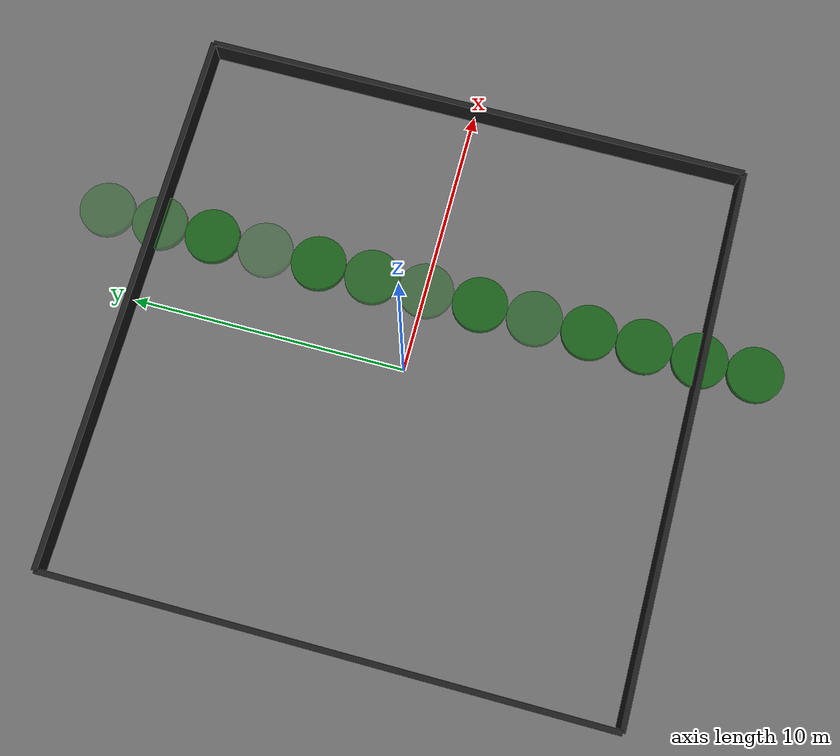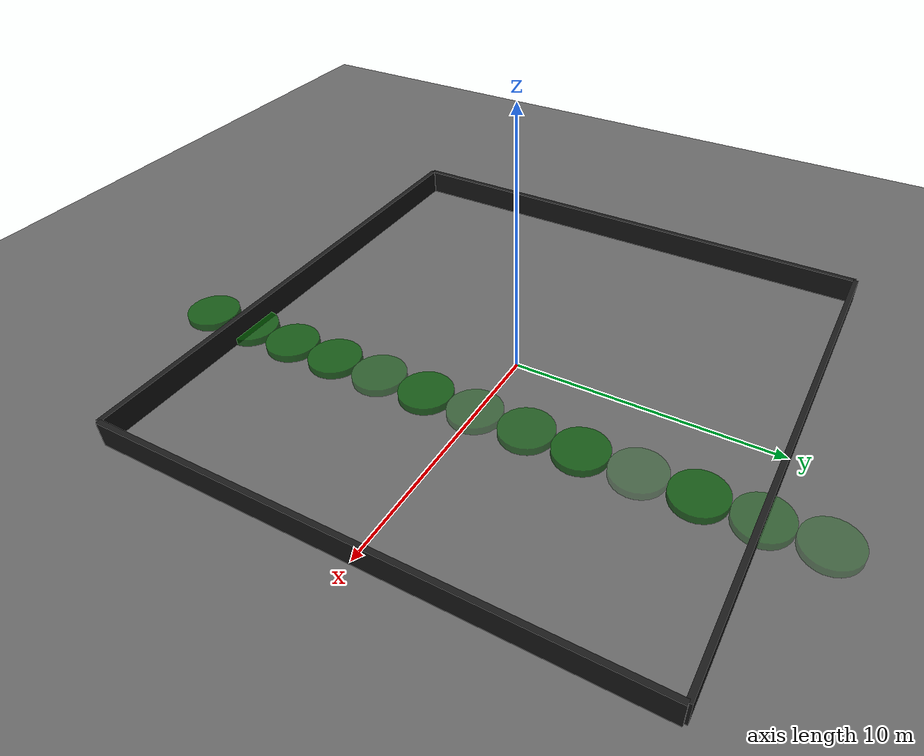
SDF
<?xml version="1.0" ?>
<sdf version="1.6">
  <world name="boxed_in_world">
    <physics name="1ms" type="ignored">
      <max_step_size>0.001</max_step_size>
      <real_time_factor>1.0</real_time_factor>
    </physics>

    <plugin filename="libignition-gazebo-physics-system.so" name="ignition::gazebo::systems::Physics"/>
    <plugin filename="libignition-gazebo-sensors-system.so" name="ignition::gazebo::systems::Sensors">
      <render_engine>ogre2</render_engine>
    </plugin>
    <plugin filename="libignition-gazebo-scene-broadcaster-system.so" name="ignition::gazebo::systems::SceneBroadcaster"/>
    <plugin filename="libignition-gazebo-user-commands-system.so" name="ignition::gazebo::systems::UserCommands"/>

    <scene>
      <ambient>1.0 1.0 1.0 1.0</ambient>
      <background>0.8 0.8 0.8 1.0</background>
      <shadows>true</shadows>
    </scene>

    <light type="directional" name="sun">
      <cast_shadows>true</cast_shadows>
      <pose>0 0 10 0 0 0</pose>
      <diffuse>0.8 0.8 0.8 1</diffuse>
      <specular>0.8 0.8 0.8 1</specular>
      <direction>-0.5 0.1 -0.9</direction>
    </light>

    <!-- Ground Plane -->
    <model name="ground_plane">
      <static>true</static>
      <link name="link">
        <collision name="collision">
          <geometry>
            <plane>
              <normal>0 0 1</normal>
              <size>20 20</size>
            </plane>
          </geometry>
        </collision>
        <visual name="visual">
          <geometry>
            <plane>
              <normal>0 0 1</normal>
              <size>20 20</size>
            </plane>
          </geometry>
          <material>
            <ambient>0.4 0.4 0.4 1</ambient>
            <diffuse>0.4 0.4 0.4 1</diffuse>
            <specular>0.4 0.4 0.4 1</specular>
          </material>
        </visual>
      </link>
    </model>

    <!-- Transparency - 0.2 -->

    <!-- Resistance Zone 1 - 50% resistance (original) -->
    <model name="grass_1">
      <static>true</static>
      <pose>3 -6 0.01 0 0 0</pose>
      <link name="link">
        <visual name="visual">
          <geometry>
            <cylinder>
              <radius>1.0</radius>
              <length>0.5</length>
            </cylinder>
          </geometry>
          <material>
            <ambient>0.0 0.36 0.0 0.7</ambient>
            <diffuse>0.0 0.36 0.0 0.7</diffuse>
            <specular>0.0 0.36 0.0 0.7</specular>
            <emissive>0.0 0.04 0.0 1.0</emissive>
          </material>
          <!-- transparency = 0.5 - 0.2 -->
          <transparency>0.3</transparency>
        </visual>
        <!-- No collision element -->
      </link>
    </model>

    <!-- Resistance Zone 2 - 70% resistance -->
    <model name="grass_2">
      <static>true</static>
      <pose>3 -4 0.01 0 0 0</pose>
      <link name="link">
        <visual name="visual">
          <geometry>
            <cylinder>
              <radius>1.0</radius>
              <length>0.5</length>
            </cylinder>
          </geometry>
          <material>
            <ambient>0.0 0.36 0.0 0.7</ambient>
            <diffuse>0.0 0.36 0.0 0.7</diffuse>
            <specular>0.0 0.24 0.0 0.7</specular>
            <emissive>0.0 0.04 0.0 1.0</emissive>
          </material>
          <transparency>0.5</transparency>
        </visual>
        <!-- No collision element -->
      </link>
    </model>

    <!-- Resistance Zone 3 - 30% resistance -->
    <model name="grass_3">
      <static>true</static>
      <pose>3 -2 0.01 0 0 0</pose>
      <link name="link">
        <visual name="visual">
          <geometry>
            <cylinder>
              <radius>1.0</radius>
              <length>0.5</length>
            </cylinder>
          </geometry>
          <material>
            <ambient>0.0 0.36 0.0 0.7</ambient>
            <diffuse>0.0 0.36 0.0 0.7</diffuse>
            <specular>0.0 0.24 0.0 0.7</specular>
            <emissive>0.0 0.04 0.0 1.0</emissive>
          </material>
          <transparency>0.1</transparency>
        </visual>
        <!-- No collision element -->
      </link>
    </model>

    <!-- Resistance Zone 4 - 80% resistance -->
    <model name="grass_4">
      <static>true</static>
      <pose>3 0 0.01 0 0 0</pose>
      <link name="link">
        <visual name="visual">
          <geometry>
            <cylinder>
              <radius>1.0</radius>
              <length>0.5</length>
            </cylinder>
          </geometry>
          <material>
            <ambient>0.0 0.36 0.0 0.7</ambient>
            <diffuse>0.0 0.36 0.0 0.7</diffuse>
            <specular>0.0 0.24 0.0 0.7</specular>
            <emissive>0.0 0.04 0.0 1.0</emissive>
          </material>
          <transparency>0.6</transparency>
        </visual>
        <!-- No collision element -->
      </link>
    </model>

    <!-- Resistance Zone 5 - 60% resistance -->
    <model name="grass_5">
      <static>true</static>
      <pose>3 2 0.01 0 0 0</pose>
      <link name="link">
        <visual name="visual">
          <geometry>
            <cylinder>
              <radius>1.0</radius>
              <length>0.5</length>
            </cylinder>
          </geometry>
          <material>
            <ambient>0.0 0.36 0.0 0.7</ambient>
            <diffuse>0.0 0.36 0.0 0.7</diffuse>
            <specular>0.0 0.24 0.0 0.7</specular>
            <emissive>0.0 0.04 0.0 1.0</emissive>
          </material>
          <transparency>0.4</transparency>
        </visual>
        <!-- No collision element -->
      </link>
    </model>

    <!-- New Zone 6 - 40% resistance (center, larger) -->
    <model name="grass_6">
      <static>true</static>
      <pose>3 4 0.01 0 0 0</pose>
      <link name="link">
        <visual name="visual">
          <geometry>
            <cylinder>
              <radius>1.0</radius>
              <length>0.5</length>
            </cylinder>
          </geometry>
          <material>
            <ambient>0.0 0.36 0.0 0.7</ambient>
            <diffuse>0.0 0.36 0.0 0.7</diffuse>
            <specular>0.0 0.24 0.0 0.7</specular>
            <emissive>0.0 0.04 0.0 1.0</emissive>
          </material>
          <transparency>0.2</transparency>
        </visual>
        <!-- No collision element -->
      </link>
    </model>

    <!-- New Zone 7 - 90% resistance (very high) -->
    <model name="grass_7">
      <static>true</static>
      <pose>3 6 0.01 0 0 0</pose>
      <link name="link">
        <visual name="visual">
          <geometry>
            <cylinder>
              <radius>1.0</radius>
              <length>0.5</length>
            </cylinder>
          </geometry>
          <material>
            <ambient>0.0 0.36 0.0 0.7</ambient>
            <diffuse>0.0 0.36 0.0 0.7</diffuse>
            <specular>0.0 0.24 0.0 0.7</specular>
            <emissive>0.0 0.04 0.0 1.0</emissive>
          </material>
          <transparency>0.7</transparency>
        </visual>
        <!-- No collision element -->
      </link>
    </model>

    <!-- New Zone 8 - 20% resistance (light) -->
    <model name="grass_8">
      <static>true</static>
      <pose>3 8 0.01 0 0 0</pose>
      <link name="link">
        <visual name="visual">
          <geometry>
            <cylinder>
              <radius>1.0</radius>
              <length>0.5</length>
            </cylinder>
          </geometry>
          <material>
            <ambient>0.0 0.36 0.0 0.7</ambient>
            <diffuse>0.0 0.36 0.0 0.7</diffuse>
            <specular>0.0 0.24 0.0 0.7</specular>
            <emissive>0.0 0.04 0.0 1.0</emissive>
          </material>
          <transparency>0.01</transparency>
        </visual>
        <!-- No collision element -->
      </link>
    </model>

    <!-- New Zone 9 - 75% resistance -->
    <model name="grass_9">
      <static>true</static>
      <pose>3 10 0.01 0 0 0</pose>
      <link name="link">
        <visual name="visual">
          <geometry>
            <cylinder>
              <radius>1.0</radius>
              <length>0.5</length>
            </cylinder>
          </geometry>
          <material>
            <ambient>0.0 0.36 0.0 0.7</ambient>
            <diffuse>0.0 0.36 0.0 0.7</diffuse>
            <specular>0.0 0.24 0.0 0.7</specular>
            <emissive>0.0 0.04 0.0 1.0</emissive>
          </material>
          <transparency>0.55</transparency>
        </visual>
        <!-- No collision element -->
      </link>
    </model>

    <!-- New Zone 10 - 85% resistance -->
    <model name="grass_10">
      <static>true</static>
      <pose>3 12 0.01 0 0 0</pose>
      <link name="link">
        <visual name="visual">
          <geometry>
            <cylinder>
              <radius>1.0</radius>
              <length>0.5</length>
            </cylinder>
          </geometry>
          <material>
            <ambient>0.0 0.36 0.0 0.7</ambient>
            <diffuse>0.0 0.36 0.0 0.7</diffuse>
            <specular>0.0 0.24 0.0 0.7</specular>
            <emissive>0.0 0.04 0.0 1.0</emissive>
          </material>
          <transparency>0.65</transparency>
        </visual>
        <!-- No collision element -->
      </link>
    </model>

    <!-- Resistance Zone 11 - 50% resistance (original) -->
    <model name="grass_11">
      <static>true</static>
      <pose>3 -8 0.01 0 0 0</pose>
      <link name="link">
        <visual name="visual">
          <geometry>
            <cylinder>
              <radius>1.0</radius>
              <length>0.5</length>
            </cylinder>
          </geometry>
          <material>
            <ambient>0.0 0.36 0.0 0.7</ambient>
            <diffuse>0.0 0.36 0.0 0.7</diffuse>
            <specular>0.0 0.36 0.0 0.7</specular>
            <emissive>0.0 0.04 0.0 1.0</emissive>
          </material>
          <!-- transparency = 0.5 - 0.2 -->
          <transparency>0.3</transparency>
        </visual>
        <!-- No collision element -->
      </link>
    </model>

    <!-- Resistance Zone 12 - 50% resistance (original) -->
    <model name="grass_12">
      <static>true</static>
      <pose>3 -10 0.01 0 0 0</pose>
      <link name="link">
        <visual name="visual">
          <geometry>
            <cylinder>
              <radius>1.0</radius>
              <length>0.5</length>
            </cylinder>
          </geometry>
          <material>
            <ambient>0.0 0.36 0.0 0.7</ambient>
            <diffuse>0.0 0.36 0.0 0.7</diffuse>
            <specular>0.0 0.36 0.0 0.7</specular>
            <emissive>0.0 0.04 0.0 1.0</emissive>
          </material>
          <!-- transparency = 0.5 - 0.2 -->
          <transparency>0.3</transparency>
        </visual>
        <!-- No collision element -->
      </link>
    </model>

    <!-- Resistance Zone 13 - 50% resistance (original) -->
    <model name="grass_13">
      <static>true</static>
      <pose>3 -12 0.01 0 0 0</pose>
      <link name="link">
        <visual name="visual">
          <geometry>
            <cylinder>
              <radius>1.0</radius>
              <length>0.5</length>
            </cylinder>
          </geometry>
          <material>
            <ambient>0.0 0.36 0.0 0.7</ambient>
            <diffuse>0.0 0.36 0.0 0.7</diffuse>
            <specular>0.0 0.36 0.0 0.7</specular>
            <emissive>0.0 0.04 0.0 1.0</emissive>
          </material>
          <!-- transparency = 0.5 - 0.2 -->
          <transparency>0.3</transparency>
        </visual>
        <!-- No collision element -->
      </link>
    </model>

    <!-- Boundary Wall -->
    <model name="boundary_wall">
      <static>true</static>
      <link name="wall_link">
        <!-- North wall -->
        <collision name="north_collision">
          <pose>0 10 0.5 0 0 0</pose>
          <geometry>
            <box>
              <size>20 0.2 1</size>
            </box>
          </geometry>
        </collision>
        <visual name="north_visual">
          <pose>0 10 0.5 0 0 0</pose>
          <geometry>
            <box>
              <size>20 0.2 1</size>
            </box>
          </geometry>
          <material>
            <ambient>0.1 0.1 0.1 1</ambient>
            <diffuse>0.1 0.1 0.1 1</diffuse>
            <specular>0.1 0.1 0.1 1</specular>
          </material>
        </visual>

        <!-- South wall -->
        <collision name="south_collision">
          <pose>0 -10 0.5 0 0 0</pose>
          <geometry>
            <box>
              <size>20 0.2 1</size>
            </box>
          </geometry>
        </collision>
        <visual name="south_visual">
          <pose>0 -10 0.5 0 0 0</pose>
          <geometry>
            <box>
              <size>20 0.2 1</size>
            </box>
          </geometry>
          <material>
            <ambient>0.1 0.1 0.1 1</ambient>
            <diffuse>0.1 0.1 0.1 1</diffuse>
            <specular>0.1 0.1 0.1 1</specular>
          </material>
        </visual>

        <!-- East wall -->
        <collision name="east_collision">
          <pose>10 0 0.5 0 0 0</pose>
          <geometry>
            <box>
              <size>0.2 20 1</size>
            </box>
          </geometry>
        </collision>
        <visual name="east_visual">
          <pose>10 0 0.5 0 0 0</pose>
          <geometry>
            <box>
              <size>0.2 20 1</size>
            </box>
          </geometry>
          <material>
            <ambient>0.1 0.1 0.1 1</ambient>
            <diffuse>0.1 0.1 0.1 1</diffuse>
            <specular>0.1 0.1 0.1 1</specular>
          </material>
        </visual>

        <!-- West wall -->
        <collision name="west_collision">
          <pose>-10 0 0.5 0 0 0</pose>
          <geometry>
            <box>
              <size>0.2 20 1</size>
            </box>
          </geometry>
        </collision>
        <visual name="west_visual">
          <pose>-10 0 0.5 0 0 0</pose>
          <geometry>
            <box>
              <size>0.2 20 1</size>
            </box>
          </geometry>
          <material>
            <ambient>0.1 0.1 0.1 1</ambient>
            <diffuse>0.1 0.1 0.1 1</diffuse>
            <specular>0.1 0.1 0.1 1</specular>
         </material>
        </visual>
      </link>
    </model>

  </world>
</sdf>
